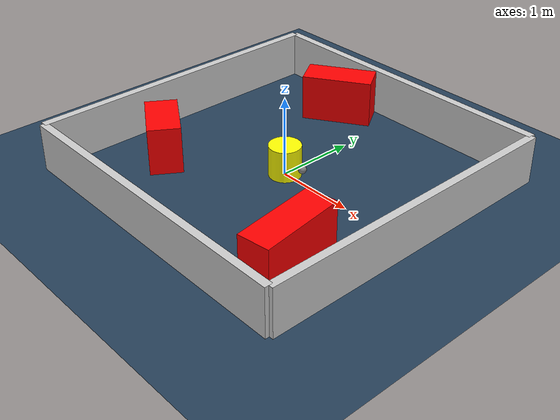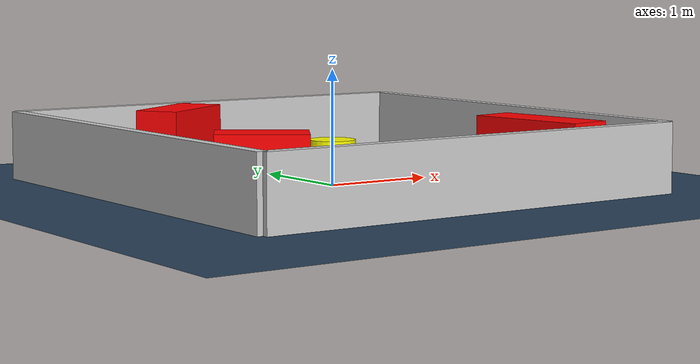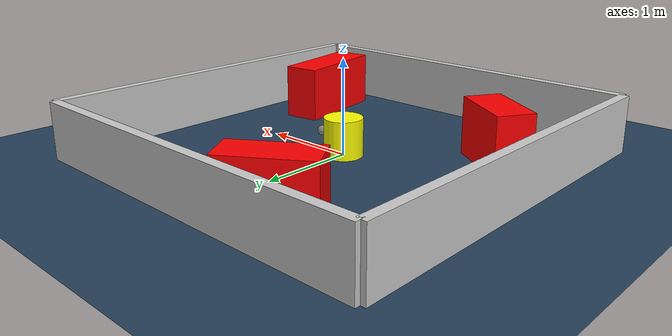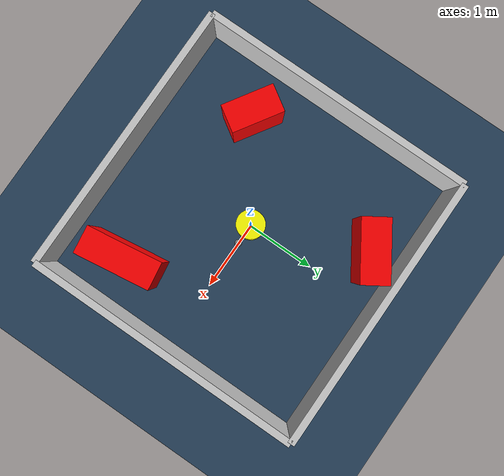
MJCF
<?xml version="1.0" ?>
<mujoco model="generated_environment">
  <option timestep="0.01" integrator="RK4" cone="elliptic"/>
  <default>
    <geom density="1"/>
  </default>
  <asset>
    <texture builtin="gradient" height="3072" rgb1="0.3 0.5 0.7" rgb2="0 0 0" type="skybox" width="512"/>
    <texture builtin="checker" height="300" mark="edge" markrgb="0.8 0.8 0.8" name="groundplane" rgb1="0.2 0.3 0.4" rgb2="0.1 0.2 0.3" type="2d" width="300"/>
    <material name="groundplane" reflectance="0.2" texrepeat="5 5" texture="groundplane" texuniform="true"/>
    <material name="robot" rgba="0.0 1.0 0.0 1"/>
  </asset>
  <worldbody>
    <light dir="0 0 -1" directional="true" pos="0 0 1.5"/>
    <geom condim="4" friction="1.0 0.005 0.001" material="groundplane" name="floor" size="0 0 0.05" type="plane"/>
    <body name="walls">
      <geom name="wall_1" condim="4" pos="-2.0 0.0 0.3" rgba="0.800000011920929 0.800000011920929 0.800000011920929 1.0" size="0.05 2.0 0.3" type="box"/>
      <geom name="wall_2" condim="4" pos="2.0 0.0 0.3" rgba="0.800000011920929 0.800000011920929 0.800000011920929 1.0" size="0.05 2.0 0.3" type="box"/>
      <geom name="wall_3" condim="4" pos="0.0 -2.0 0.3" rgba="0.800000011920929 0.800000011920929 0.800000011920929 1.0" size="2.0 0.05 0.3" type="box"/>
      <geom name="wall_4" condim="4" pos="0.0 2.0 0.3" rgba="0.800000011920929 0.800000011920929 0.800000011920929 1.0" size="2.0 0.05 0.3" type="box"/>
    </body>
    <body name="robot">
      <joint name="joint_x" type="slide" pos="0 0 0" axis="1 0 0"/>
      <joint name="joint_y" type="slide" pos="0 0 0" axis="0 1 0"/>
      <geom name="robot" type="sphere" pos="0.3 0.0 0.2" size="0.05" mass="5." friction="1.0 0.005 0.0001" condim="4" rgba="0.5 0.5 0.5 1.0"/>
      <site name="sensor_ball"/>
    </body>
    <body name="obstacle_movable_1">
      <geom name="obstacle_movable_1" condim="4" pos="0.0 0.0 0.2" euler="0 0 0.0" friction="1.0 0.005 0.001" rgba="1.0 1.0 0.0 1.0" size="0.2 0.2 0.0" type="cylinder" mass="0.1"/>
      <joint type="free"/>
    </body>
    <body name="obstacle_2_static">
      <geom name="obstacle_2_static" condim="4" pos="1.3353204063193598 -1.1560308797960164 0.3" euler="0 0 278.1277568342905" friction="1.0 0.005 0.001" rgba="1 0 0 1" size="0.5405971744974815 0.2 0.3" type="box"/>
    </body>
    <body name="obstacle_3_static">
      <geom name="obstacle_3_static" condim="4" pos="-0.6279268555294867 1.5263120910218706 0.3" euler="0 0 32.68803018462616" friction="1.0 0.005 0.001" rgba="1 0 0 1" size="0.4439050469068384 0.2 0.3" type="box"/>
    </body>
    <body name="obstacle_4_static">
      <geom name="obstacle_4_static" condim="4" pos="-1.2572892802593274 -0.8366524584221312 0.3" euler="0 0 327.4358650984018" friction="1.0 0.005 0.001" rgba="1 0 0 1" size="0.3715666890299667 0.2 0.3" type="box"/>
    </body>
  </worldbody>
  <actuator>
    <motor name="actuator_x" joint="joint_x" gear="1" ctrlrange="-1 1"/>
    <motor name="actuator_y" joint="joint_y" gear="1" ctrlrange="-1 1"/>
  </actuator>
</mujoco>
